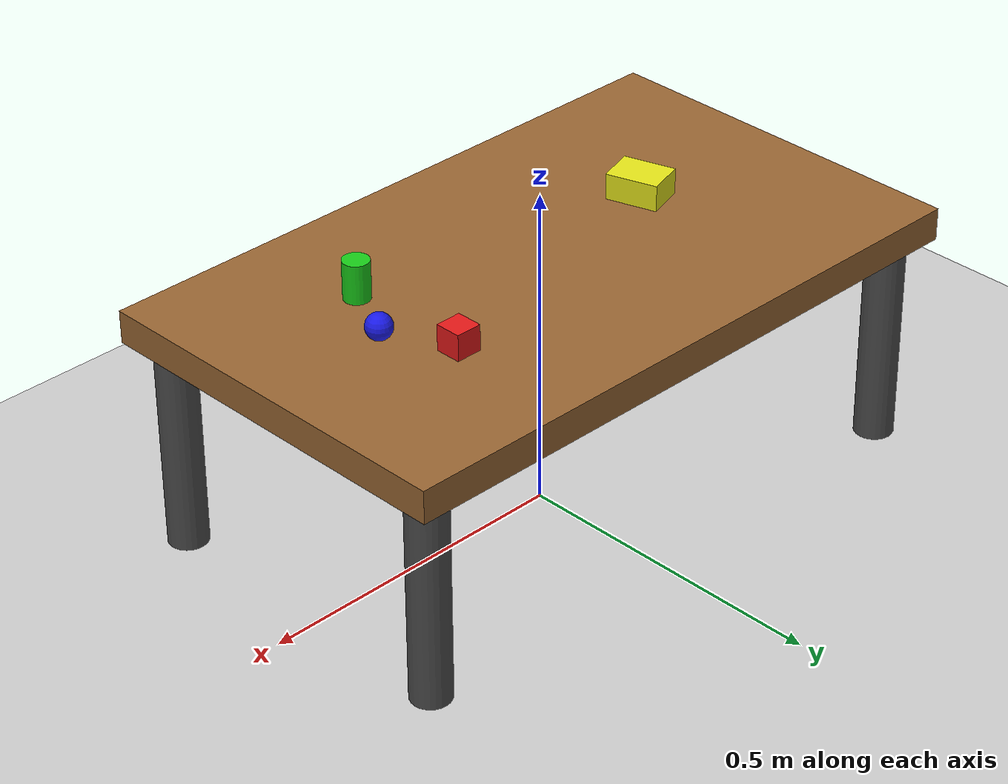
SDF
<?xml version="1.0" ?>
<sdf version="1.8">
  <world name="tabletop_world">

    <!-- GUI camera position -->
    <gui fullscreen="0">
      <camera name="user_camera">
        <pose>1.5 -1.5 1.2 0 0.4 2.35</pose>  <!-- x y z roll pitch yaw -->
      </camera>
    </gui>

    <!-- Physics -->
    <physics name="1ms" type="ignored">
      <max_step_size>0.001</max_step_size>
      <real_time_factor>1.0</real_time_factor>
    </physics>

    <!-- Plugins -->
    <plugin filename="gz-sim-physics-system" name="gz::sim::systems::Physics"/>
    <plugin filename="gz-sim-user-commands-system" name="gz::sim::systems::UserCommands"/>
    <plugin filename="gz-sim-scene-broadcaster-system" name="gz::sim::systems::SceneBroadcaster"/>

    <!-- Lighting -->
    <light type="directional" name="sun">
      <cast_shadows>true</cast_shadows>
      <pose>0 0 10 0 0 0</pose>
      <diffuse>0.8 0.8 0.8 1</diffuse>
      <specular>0.2 0.2 0.2 1</specular>
      <direction>-0.5 0.1 -0.9</direction>
    </light>

    <!-- Ground Plane -->
    <model name="ground_plane">
      <static>true</static>
      <link name="link">
        <collision name="collision">
          <geometry>
            <plane>
              <normal>0 0 1</normal>
              <size>10 10</size>
            </plane>
          </geometry>
        </collision>
        <visual name="visual">
          <geometry>
            <plane>
              <normal>0 0 1</normal>
              <size>10 10</size>
            </plane>
          </geometry>
          <material>
            <ambient>0.8 0.8 0.8 1</ambient>
            <diffuse>0.8 0.8 0.8 1</diffuse>
          </material>
        </visual>
      </link>
    </model>

    <!-- Table -->
    <model name="table">
      <static>true</static>
      <pose>0 0 0.375 0 0 0</pose>
      <link name="table_top">
        <collision name="collision">
          <geometry>
            <box>
              <size>1.0 0.6 0.05</size>
            </box>
          </geometry>
        </collision>
        <visual name="visual">
          <geometry>
            <box>
              <size>1.0 0.6 0.05</size>
            </box>
          </geometry>
          <material>
            <ambient>0.6 0.4 0.2 1</ambient>
            <diffuse>0.6 0.4 0.2 1</diffuse>
          </material>
        </visual>
      </link>
      <!-- Table legs -->
      <link name="leg1">
        <pose>0.45 0.25 -0.175 0 0 0</pose>
        <collision name="collision"><geometry><cylinder><radius>0.03</radius><length>0.35</length></cylinder></geometry></collision>
        <visual name="visual"><geometry><cylinder><radius>0.03</radius><length>0.35</length></cylinder></geometry>
          <material><ambient>0.3 0.3 0.3 1</ambient><diffuse>0.3 0.3 0.3 1</diffuse></material>
        </visual>
      </link>
      <link name="leg2">
        <pose>0.45 -0.25 -0.175 0 0 0</pose>
        <collision name="collision"><geometry><cylinder><radius>0.03</radius><length>0.35</length></cylinder></geometry></collision>
        <visual name="visual"><geometry><cylinder><radius>0.03</radius><length>0.35</length></cylinder></geometry>
          <material><ambient>0.3 0.3 0.3 1</ambient><diffuse>0.3 0.3 0.3 1</diffuse></material>
        </visual>
      </link>
      <link name="leg3">
        <pose>-0.45 0.25 -0.175 0 0 0</pose>
        <collision name="collision"><geometry><cylinder><radius>0.03</radius><length>0.35</length></cylinder></geometry></collision>
        <visual name="visual"><geometry><cylinder><radius>0.03</radius><length>0.35</length></cylinder></geometry>
          <material><ambient>0.3 0.3 0.3 1</ambient><diffuse>0.3 0.3 0.3 1</diffuse></material>
        </visual>
      </link>
      <link name="leg4">
        <pose>-0.45 -0.25 -0.175 0 0 0</pose>
        <collision name="collision"><geometry><cylinder><radius>0.03</radius><length>0.35</length></cylinder></geometry></collision>
        <visual name="visual"><geometry><cylinder><radius>0.03</radius><length>0.35</length></cylinder></geometry>
          <material><ambient>0.3 0.3 0.3 1</ambient><diffuse>0.3 0.3 0.3 1</diffuse></material>
        </visual>
      </link>
      <joint name="leg1_joint" type="fixed"><parent>table_top</parent><child>leg1</child></joint>
      <joint name="leg2_joint" type="fixed"><parent>table_top</parent><child>leg2</child></joint>
      <joint name="leg3_joint" type="fixed"><parent>table_top</parent><child>leg3</child></joint>
      <joint name="leg4_joint" type="fixed"><parent>table_top</parent><child>leg4</child></joint>
    </model>

    <!-- Red Cube (graspable object) -->
    <model name="red_cube">
      <pose>0.25 0.1 0.425 0 0 0</pose>
      <link name="link">
        <inertial>
          <mass>0.1</mass>
          <inertia>
            <ixx>0.000067</ixx><iyy>0.000067</iyy><izz>0.000067</izz>
          </inertia>
        </inertial>
        <collision name="collision">
          <geometry>
            <box><size>0.04 0.04 0.04</size></box>
          </geometry>
        </collision>
        <visual name="visual">
          <geometry>
            <box><size>0.04 0.04 0.04</size></box>
          </geometry>
          <material>
            <ambient>0.9 0.1 0.1 1</ambient>
            <diffuse>0.9 0.1 0.1 1</diffuse>
          </material>
        </visual>
      </link>
    </model>

    <!-- Green Cylinder -->
    <model name="green_cylinder">
      <pose>0.25 -0.1 0.43 0 0 0</pose>
      <link name="link">
        <inertial>
          <mass>0.08</mass>
          <inertia>
            <ixx>0.00005</ixx><iyy>0.00005</iyy><izz>0.00003</izz>
          </inertia>
        </inertial>
        <collision name="collision">
          <geometry>
            <cylinder><radius>0.02</radius><length>0.06</length></cylinder>
          </geometry>
        </collision>
        <visual name="visual">
          <geometry>
            <cylinder><radius>0.02</radius><length>0.06</length></cylinder>
          </geometry>
          <material>
            <ambient>0.1 0.8 0.1 1</ambient>
            <diffuse>0.1 0.8 0.1 1</diffuse>
          </material>
        </visual>
      </link>
    </model>

    <!-- Blue Sphere -->
    <model name="blue_sphere">
      <pose>0.3 0.0 0.42 0 0 0</pose>
      <link name="link">
        <inertial>
          <mass>0.05</mass>
          <inertia>
            <ixx>0.00002</ixx><iyy>0.00002</iyy><izz>0.00002</izz>
          </inertia>
        </inertial>
        <collision name="collision">
          <geometry>
            <sphere><radius>0.02</radius></sphere>
          </geometry>
        </collision>
        <visual name="visual">
          <geometry>
            <sphere><radius>0.02</radius></sphere>
          </geometry>
          <material>
            <ambient>0.1 0.1 0.9 1</ambient>
            <diffuse>0.1 0.1 0.9 1</diffuse>
          </material>
        </visual>
      </link>
    </model>

    <!-- Yellow Box (larger) -->
    <model name="yellow_box">
      <pose>-0.2 0.0 0.44 0 0 0.3</pose>
      <link name="link">
        <inertial>
          <mass>0.2</mass>
          <inertia>
            <ixx>0.0002</ixx><iyy>0.0003</iyy><izz>0.0002</izz>
          </inertia>
        </inertial>
        <collision name="collision">
          <geometry>
            <box><size>0.06 0.08 0.04</size></box>
          </geometry>
        </collision>
        <visual name="visual">
          <geometry>
            <box><size>0.06 0.08 0.04</size></box>
          </geometry>
          <material>
            <ambient>0.9 0.9 0.1 1</ambient>
            <diffuse>0.9 0.9 0.1 1</diffuse>
          </material>
        </visual>
      </link>
    </model>

  </world>
</sdf>
